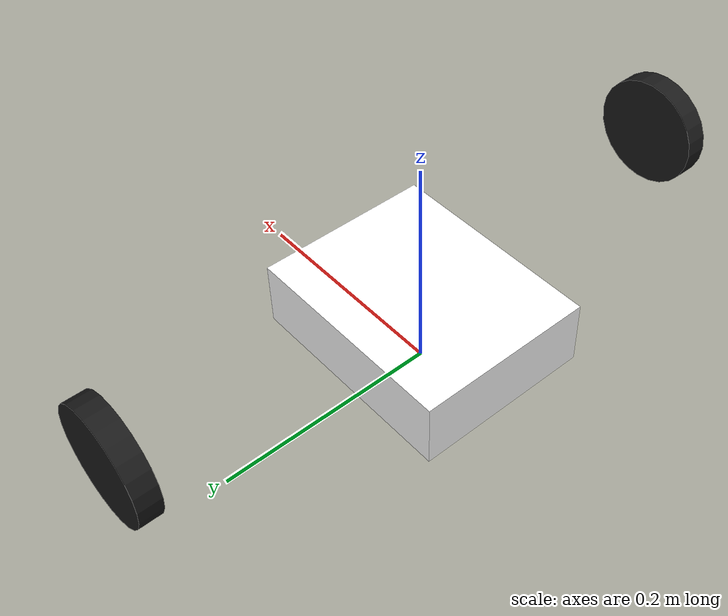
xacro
<?xml version="1.0"?>
<robot xmlns:xacro="http://www.ros.org/wiki/xacro" name="waveshare_servos">

  <!-- Tunables: set to your real geometry -->
  <xacro:property name="wheel_radius" value="0.050"/>      <!-- 5 cm -->
  <xacro:property name="wheel_width"  value="0.020"/>      <!-- 2 cm -->
  <xacro:property name="wheel_sep"    value="0.280"/>      <!-- distance between wheel centers -->
  <xacro:property name="base_x"       value="0.20"/>
  <xacro:property name="base_y"       value="0.16"/>
  <xacro:property name="base_z"       value="0.06"/>       <!-- base height (centered) -->
  <xacro:property name="wheel_z"      value="${wheel_radius}"/>

  <!-- Base -->
  <link name="base_link">
    <visual>
      <origin xyz="0 0 ${wheel_z}"/>
      <geometry>
        <box size="${base_x} ${base_y} ${base_z}"/>
      </geometry>
      <material name="white"><color rgba="1 1 1 1"/></material>
    </visual>
    <inertial>
      <origin xyz="0 0 ${wheel_z}"/>
      <mass value="1.0"/>
      <inertia ixx="0.02" iyy="0.02" izz="0.02" ixy="0" ixz="0" iyz="0"/>
    </inertial>
  </link>

  <!-- LEFT WHEEL -->
  <link name="left_wheel_link">
    <visual>
      <!-- Cylinder axis is along Z by default; rotate to align with Y -->
      <origin xyz="0 ${wheel_sep/2} ${wheel_z}" rpy="1.57079632679 0 0"/>
      <geometry>
        <cylinder radius="${wheel_radius}" length="${wheel_width}"/>
      </geometry>
      <material name="black"><color rgba="0.1 0.1 0.1 1"/></material>
    </visual>
  </link>
  <joint name="left_wheel_joint" type="continuous">
    <!-- ROS REP-103: x forward, y left, z up; wheels rotate about +Y -->
    <parent link="base_link"/>
    <child link="left_wheel_link"/>
    <origin xyz="0 ${wheel_sep/2} ${wheel_z}"/>
    <axis xyz="0 1 0"/>
    <limit velocity="100.0" effort="0.0"/>
  </joint>

  <!-- RIGHT WHEEL -->
  <link name="right_wheel_link">
    <visual>
      <origin xyz="0 -${wheel_sep/2} ${wheel_z}" rpy="1.57079632679 0 0"/>
      <geometry>
        <cylinder radius="${wheel_radius}" length="${wheel_width}"/>
      </geometry>
      <material name="black"><color rgba="0.1 0.1 0.1 1"/></material>
    </visual>
  </link>
  <joint name="right_wheel_joint" type="continuous">
    <parent link="base_link"/>
    <child link="right_wheel_link"/>
    <origin xyz="0 -${wheel_sep/2} ${wheel_z}"/>
    <axis xyz="0 1 0"/>
    <limit velocity="100.0" effort="0.0"/>
  </joint>

  <!-- ros2_control hardware mapping (your plugin + servo IDs) -->
  <xacro:include filename="$(find waveshare_servos)/description/ros2_control/example.ros2_control.xacro"/>
  <xacro:example_ws_ros2_control name="example_ws_ros2_control"
                                 left_joint_name="left_wheel_joint" left_id="2"
                                 right_joint_name="right_wheel_joint" right_id="1"/>

</robot>
